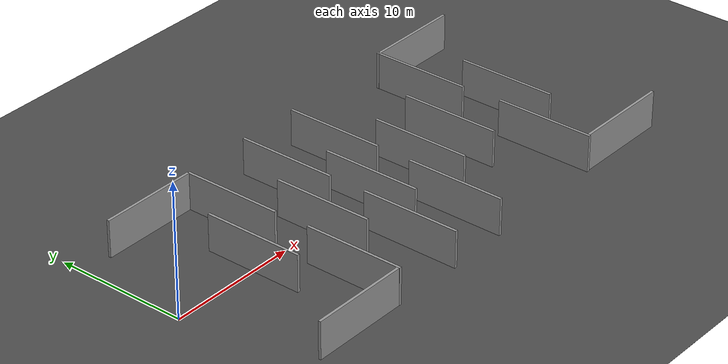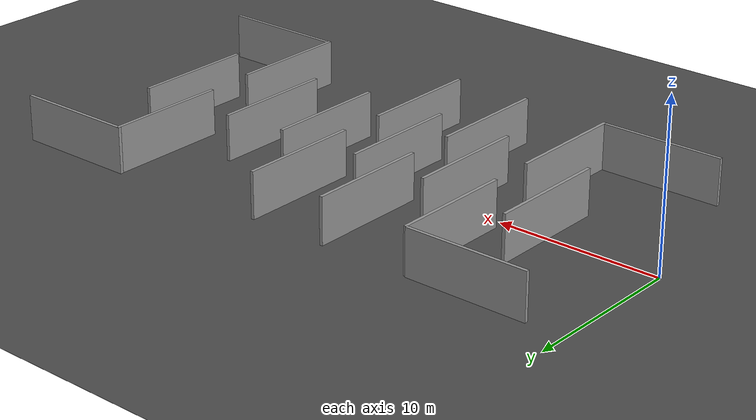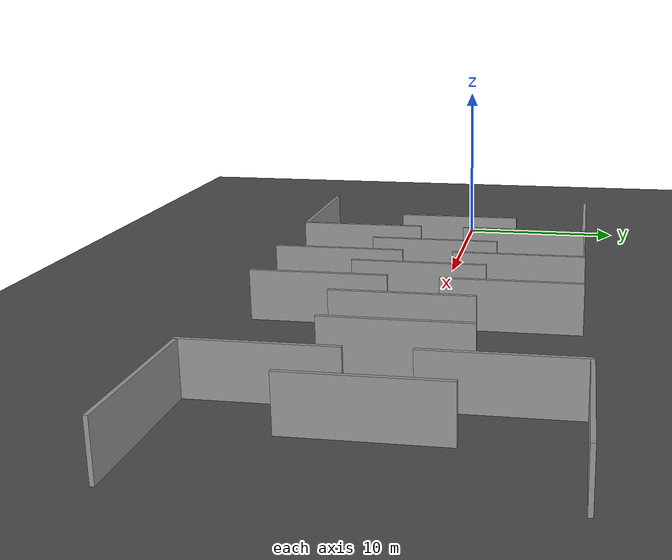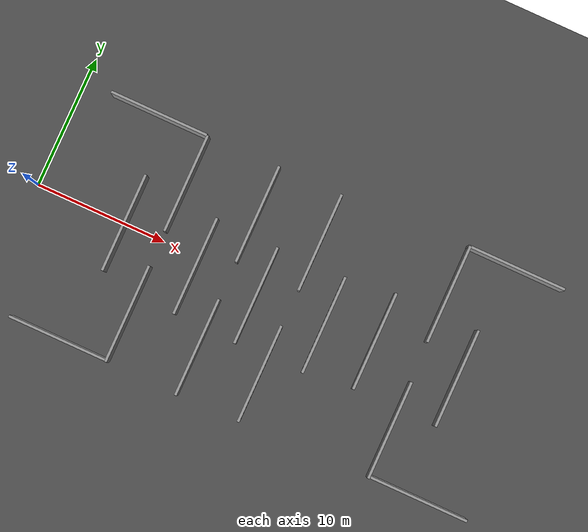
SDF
<sdf version="1.6">
 <world name="default">
  <plugin name="disable_physics" filename="libdisable_physics.so"/>
  <scene>
   <sky><clouds><speed>20</speed></clouds></sky>
   <ambient>0.4 0.4 0.4 1</ambient>
   <background>0.7 0.7 0.7 1</background>
   <shadows>1</shadows>
  </scene>
  <light name="sun" type="directional">
   <pose>0 0 10 0 -0 0</pose>
   <diffuse>0.8 0.8 0.8 1</diffuse>
   <specular>0.1 0.1 0.1 1</specular>
   <attenuation>
    <range>1000</range>
    <constant>0.9</constant>
    <linear>0.01</linear>
    <quadratic>0.001</quadratic>
   </attenuation>
   <direction>-0.5 0.5 -1</direction>
  </light>
  <model name="asphalt_plane">
   <pose>7.3408 -1.2927 0 0 -0 0</pose>
   <static>1</static>
   <link name="link">
    <collision name="collision"><geometry><box><size>10131.8 10000 0.01</size></box></geometry></collision>
    <visual name="visual">
     <cast_shadows>0</cast_shadows>
     <geometry><box><size>101.318 100 0.01</size></box></geometry>
     <material>
      <script>
       <uri>file:///home/jtorde/Desktop/ws/src/acl-ros-extra-v2/acl_sim/urdf/grass/materials/scripts</uri>
       <uri>file:///home/jtorde/Desktop/ws/src/acl-ros-extra-v2/acl_sim/urdf/grass/materials/textures</uri>
       <name>vrc/asphalt</name>
      </script>
     </material>
    </visual>
   </link>
  </model>
  <gravity>0 0 -9.8</gravity>
  <magnetic_field>6e-06 2.3e-05 -4.2e-05</magnetic_field>
  <atmosphere type="adiabatic"/>
  <physics name="default_physics" default="0" type="ode">
   <max_step_size>0.001</max_step_size>
   <real_time_factor>1</real_time_factor>
   <real_time_update_rate>1000</real_time_update_rate>
  </physics>
  <spherical_coordinates>
   <surface_model>EARTH_WGS84</surface_model>
   <latitude_deg>0</latitude_deg>
   <longitude_deg>0</longitude_deg>
   <elevation>0</elevation>
   <heading_deg>0</heading_deg>
  </spherical_coordinates>
  <light name="user_directional_light_0" type="directional">
   <pose>34.9855 -1.80031 1 0 -0 0</pose>
   <diffuse>0.5 0.5 0.5 1</diffuse>
   <specular>0.1 0.1 0.1 1</specular>
   <direction>0.1 0.1 -0.9</direction>
   <attenuation>
    <range>20</range>
    <constant>0.5</constant>
    <linear>0.01</linear>
    <quadratic>0.001</quadratic>
   </attenuation>
  </light>
  <light name="user_directional_light_1" type="directional">
   <pose>65.0809 -34.7744 1 0 -0 0</pose>
   <diffuse>0.5 0.5 0.5 1</diffuse>
   <specular>0.1 0.1 0.1 1</specular>
   <direction>0.1 0.1 -0.9</direction>
   <attenuation>
    <range>20</range>
    <constant>0.5</constant>
    <linear>0.01</linear>
    <quadratic>0.001</quadratic>
   </attenuation>
  </light>
  <light name="user_directional_light_2" type="directional">
   <pose>27.7796 -25.3494 1 0 -0 0</pose>
   <diffuse>0.5 0.5 0.5 1</diffuse>
   <specular>0.1 0.1 0.1 1</specular>
   <direction>0.1 0.1 -0.9</direction>
   <attenuation>
    <range>20</range>
    <constant>0.5</constant>
    <linear>0.01</linear>
    <quadratic>0.001</quadratic>
   </attenuation>
  </light>
  <model name="grey_wall_clone">
   <static>1</static>
   <link name="link">
    <pose>0 0 1.4 0 -0 0</pose>
    <collision name="collision"><geometry><box><size>7.5 0.2 2.8</size></box></geometry></collision>
    <visual name="visual">
     <cast_shadows>0</cast_shadows>
     <geometry><box><size>7.5 0.2 2.8</size></box></geometry>
     <material>
      <script>
       <uri>model://grey_wall/materials/scripts</uri>
       <uri>model://grey_wall/materials/textures</uri>
       <name>vrc/grey_wall</name>
      </script>
     </material>
    </visual>
   </link>
   <pose>7.00157 0.018635 0 0 0 -1.56755</pose>
  </model>
  <model name="grey_wall_clone_clone_clone_0_clone">
   <static>1</static>
   <link name="link">
    <pose>0 0 1.4 0 -0 0</pose>
    <collision name="collision"><geometry><box><size>7.5 0.2 2.8</size></box></geometry></collision>
    <visual name="visual">
     <cast_shadows>0</cast_shadows>
     <geometry><box><size>7.5 0.2 2.8</size></box></geometry>
     <material>
      <script>
       <uri>model://grey_wall/materials/scripts</uri>
       <uri>model://grey_wall/materials/textures</uri>
       <name>vrc/grey_wall</name>
      </script>
     </material>
    </visual>
   </link>
   <pose>9.85834 4.40172 0 0 0 -1.56755</pose>
  </model>
  <model name="grey_wall_clone_clone_clone_0_clone_0">
   <static>1</static>
   <link name="link">
    <pose>0 0 1.4 0 -0 0</pose>
    <collision name="collision"><geometry><box><size>7.5 0.2 2.8</size></box></geometry></collision>
    <visual name="visual">
     <cast_shadows>0</cast_shadows>
     <geometry><box><size>7.5 0.2 2.8</size></box></geometry>
     <material>
      <script>
       <uri>model://grey_wall/materials/scripts</uri>
       <uri>model://grey_wall/materials/textures</uri>
       <name>vrc/grey_wall</name>
      </script>
     </material>
    </visual>
   </link>
   <pose>9.92296 -5.77377 0 0 0 -1.56755</pose>
  </model>
  <model name="grey_wall_clone_clone_clone_0_clone_1">
   <static>1</static>
   <link name="link">
    <pose>0 0 1.4 0 -0 0</pose>
    <collision name="collision"><geometry><box><size>7.5 0.2 2.8</size></box></geometry></collision>
    <visual name="visual">
     <cast_shadows>0</cast_shadows>
     <geometry><box><size>7.5 0.2 2.8</size></box></geometry>
     <material>
      <script>
       <uri>model://grey_wall/materials/scripts</uri>
       <uri>model://grey_wall/materials/textures</uri>
       <name>vrc/grey_wall</name>
      </script>
     </material>
    </visual>
   </link>
   <pose>12.9029 -0.681068 0 0 0 -1.56755</pose>
  </model>
  <model name="grey_wall_clone_clone_clone_0_clone_2">
   <static>1</static>
   <link name="link">
    <pose>0 0 1.4 0 -0 0</pose>
    <collision name="collision"><geometry><box><size>7.5 0.2 2.8</size></box></geometry></collision>
    <visual name="visual">
     <cast_shadows>0</cast_shadows>
     <geometry><box><size>7.5 0.2 2.8</size></box></geometry>
     <material>
      <script>
       <uri>model://grey_wall/materials/scripts</uri>
       <uri>model://grey_wall/materials/textures</uri>
       <name>vrc/grey_wall</name>
      </script>
     </material>
    </visual>
   </link>
   <pose>15.3934 4.51602 0 0 0 -1.56755</pose>
  </model>
  <model name="grey_wall_clone_clone_clone_0_clone_3">
   <static>1</static>
   <link name="link">
    <pose>0 0 1.4 0 -0 0</pose>
    <collision name="collision"><geometry><box><size>7.5 0.2 2.8</size></box></geometry></collision>
    <visual name="visual">
     <cast_shadows>0</cast_shadows>
     <geometry><box><size>7.5 0.2 2.8</size></box></geometry>
     <material>
      <script>
       <uri>model://grey_wall/materials/scripts</uri>
       <uri>model://grey_wall/materials/textures</uri>
       <name>vrc/grey_wall</name>
      </script>
     </material>
    </visual>
   </link>
   <pose>15.4224 -5.87455 0 0 0 -1.56755</pose>
  </model>
  <model name="grey_wall_clone_clone_clone_0_clone_4">
   <static>1</static>
   <link name="link">
    <pose>0 0 1.4 0 -0 0</pose>
    <collision name="collision"><geometry><box><size>7.5 0.2 2.8</size></box></geometry></collision>
    <visual name="visual">
     <cast_shadows>0</cast_shadows>
     <geometry><box><size>7.5 0.2 2.8</size></box></geometry>
     <material>
      <script>
       <uri>model://grey_wall/materials/scripts</uri>
       <uri>model://grey_wall/materials/textures</uri>
       <name>vrc/grey_wall</name>
      </script>
     </material>
    </visual>
   </link>
   <pose>17.6956 -0.795383 0 0 0 -1.56755</pose>
  </model>
  <model name="grey_wall_clone_clone_clone_0_clone_5">
   <static>1</static>
   <link name="link">
    <pose>0 0 1.4 0 -0 0</pose>
    <collision name="collision"><geometry><box><size>7.5 0.2 2.8</size></box></geometry></collision>
    <visual name="visual">
     <cast_shadows>0</cast_shadows>
     <geometry><box><size>7.5 0.2 2.8</size></box></geometry>
     <material>
      <script>
       <uri>model://grey_wall/materials/scripts</uri>
       <uri>model://grey_wall/materials/textures</uri>
       <name>vrc/grey_wall</name>
      </script>
     </material>
    </visual>
   </link>
   <pose>20.2822 4.52314 0 0 0 -1.56755</pose>
  </model>
  <model name="grey_wall_clone_clone_clone_0_clone_6">
   <static>1</static>
   <link name="link">
    <pose>0 0 1.4 0 -0 0</pose>
    <collision name="collision"><geometry><box><size>7.5 0.2 2.8</size></box></geometry></collision>
    <visual name="visual">
     <cast_shadows>0</cast_shadows>
     <geometry><box><size>7.5 0.2 2.8</size></box></geometry>
     <material>
      <script>
       <uri>model://grey_wall/materials/scripts</uri>
       <uri>model://grey_wall/materials/textures</uri>
       <name>vrc/grey_wall</name>
      </script>
     </material>
    </visual>
   </link>
   <pose>20.251 -5.74465 0 0 0 -1.56755</pose>
  </model>
  <model name="grey_wall_clone_clone_clone_0_clone_7">
   <static>1</static>
   <link name="link">
    <pose>0 0 1.4 0 -0 0</pose>
    <collision name="collision"><geometry><box><size>7.5 0.2 2.8</size></box></geometry></collision>
    <visual name="visual">
     <cast_shadows>0</cast_shadows>
     <geometry><box><size>7.5 0.2 2.8</size></box></geometry>
     <material>
      <script>
       <uri>model://grey_wall/materials/scripts</uri>
       <uri>model://grey_wall/materials/textures</uri>
       <name>vrc/grey_wall</name>
      </script>
     </material>
    </visual>
   </link>
   <pose>22.9545 -0.705557 0 0 0 -1.56755</pose>
  </model>
  <model name="grey_wall_clone_clone_clone_0_clone_8">
   <static>1</static>
   <link name="link">
    <pose>0 0 1.4 0 -0 0</pose>
    <collision name="collision"><geometry><box><size>7.5 0.2 2.8</size></box></geometry></collision>
    <visual name="visual">
     <cast_shadows>0</cast_shadows>
     <geometry><box><size>7.5 0.2 2.8</size></box></geometry>
     <material>
      <script>
       <uri>model://grey_wall/materials/scripts</uri>
       <uri>model://grey_wall/materials/textures</uri>
       <name>vrc/grey_wall</name>
      </script>
     </material>
    </visual>
   </link>
   <pose>26.7261 -0.257909 0 0 0 -1.56755</pose>
  </model>
  <model name="grey_wall_clone_1_clone_0_clone">
   <static>1</static>
   <link name="link">
    <pose>0 0 1.4 0 -0 0</pose>
    <collision name="collision"><geometry><box><size>7.5 0.2 2.8</size></box></geometry></collision>
    <visual name="visual">
     <cast_shadows>0</cast_shadows>
     <geometry><box><size>7.5 0.2 2.8</size></box></geometry>
     <material>
      <script>
       <uri>model://grey_wall/materials/scripts</uri>
       <uri>model://grey_wall/materials/textures</uri>
       <name>vrc/grey_wall</name>
      </script>
     </material>
    </visual>
   </link>
   <pose>6.09632 -9.40757 0 0 -0 0</pose>
  </model>
  <model name="grey_wall_clone_1_clone_0_clone_0">
   <static>1</static>
   <link name="link">
    <pose>0 0 1.4 0 -0 0</pose>
    <collision name="collision"><geometry><box><size>7.5 0.2 2.8</size></box></geometry></collision>
    <visual name="visual">
     <cast_shadows>0</cast_shadows>
     <geometry><box><size>7.5 0.2 2.8</size></box></geometry>
     <material>
      <script>
       <uri>model://grey_wall/materials/scripts</uri>
       <uri>model://grey_wall/materials/textures</uri>
       <name>vrc/grey_wall</name>
      </script>
     </material>
    </visual>
   </link>
   <pose>6.03579 8.13162 0 0 -0 0</pose>
  </model>
  <model name="grey_wall_clone_clone_clone_0_clone_0_clone">
   <static>1</static>
   <link name="link">
    <pose>0 0 1.4 0 -0 0</pose>
    <collision name="collision"><geometry><box><size>7.5 0.2 2.8</size></box></geometry></collision>
    <visual name="visual">
     <cast_shadows>0</cast_shadows>
     <geometry><box><size>7.5 0.2 2.8</size></box></geometry>
     <material>
      <script>
       <uri>model://grey_wall/materials/scripts</uri>
       <uri>model://grey_wall/materials/textures</uri>
       <name>vrc/grey_wall</name>
      </script>
     </material>
    </visual>
   </link>
   <pose>30.3081 -5.55767 0 0 0 -1.56755</pose>
  </model>
  <model name="grey_wall_clone_clone_clone_0_clone_0_clone_clone">
   <static>1</static>
   <link name="link">
    <pose>0 0 1.4 0 -0 0</pose>
    <collision name="collision"><geometry><box><size>7.5 0.2 2.8</size></box></geometry></collision>
    <visual name="visual">
     <cast_shadows>0</cast_shadows>
     <geometry><box><size>7.5 0.2 2.8</size></box></geometry>
     <material>
      <script>
       <uri>model://grey_wall/materials/scripts</uri>
       <uri>model://grey_wall/materials/textures</uri>
       <name>vrc/grey_wall</name>
      </script>
     </material>
    </visual>
   </link>
   <pose>30.1179 4.97688 0 0 0 -1.56755</pose>
  </model>
  <model name="grey_wall_clone_1_clone_0_clone_clone">
   <static>1</static>
   <link name="link">
    <pose>0 0 1.4 0 -0 0</pose>
    <collision name="collision"><geometry><box><size>7.5 0.2 2.8</size></box></geometry></collision>
    <visual name="visual">
     <cast_shadows>0</cast_shadows>
     <geometry><box><size>7.5 0.2 2.8</size></box></geometry>
     <material>
      <script>
       <uri>model://grey_wall/materials/scripts</uri>
       <uri>model://grey_wall/materials/textures</uri>
       <name>vrc/grey_wall</name>
      </script>
     </material>
    </visual>
   </link>
   <pose>34.1848 -9.14759 0 0 -0 0</pose>
  </model>
  <model name="grey_wall_clone_1_clone_0_clone_0_clone">
   <static>1</static>
   <link name="link">
    <pose>0 0 1.4 0 -0 0</pose>
    <collision name="collision"><geometry><box><size>7.5 0.2 2.8</size></box></geometry></collision>
    <visual name="visual">
     <cast_shadows>0</cast_shadows>
     <geometry><box><size>7.5 0.2 2.8</size></box></geometry>
     <material>
      <script>
       <uri>model://grey_wall/materials/scripts</uri>
       <uri>model://grey_wall/materials/textures</uri>
       <name>vrc/grey_wall</name>
      </script>
     </material>
    </visual>
   </link>
   <pose>33.7389 8.67982 0 0 -0 0</pose>
  </model>
  <model name="grey_wall_clone_clone">
   <static>1</static>
   <link name="link">
    <pose>0 0 1.4 0 -0 0</pose>
    <collision name="collision"><geometry><box><size>7.5 0.2 2.8</size></box></geometry></collision>
    <visual name="visual">
     <cast_shadows>0</cast_shadows>
     <geometry><box><size>7.5 0.2 2.8</size></box></geometry>
     <material>
      <script>
       <uri>model://grey_wall/materials/scripts</uri>
       <uri>model://grey_wall/materials/textures</uri>
       <name>vrc/grey_wall</name>
      </script>
     </material>
    </visual>
   </link>
   <pose>33.129 -0.246023 0 0 0 -1.56755</pose>
  </model>
 </world>
</sdf>
